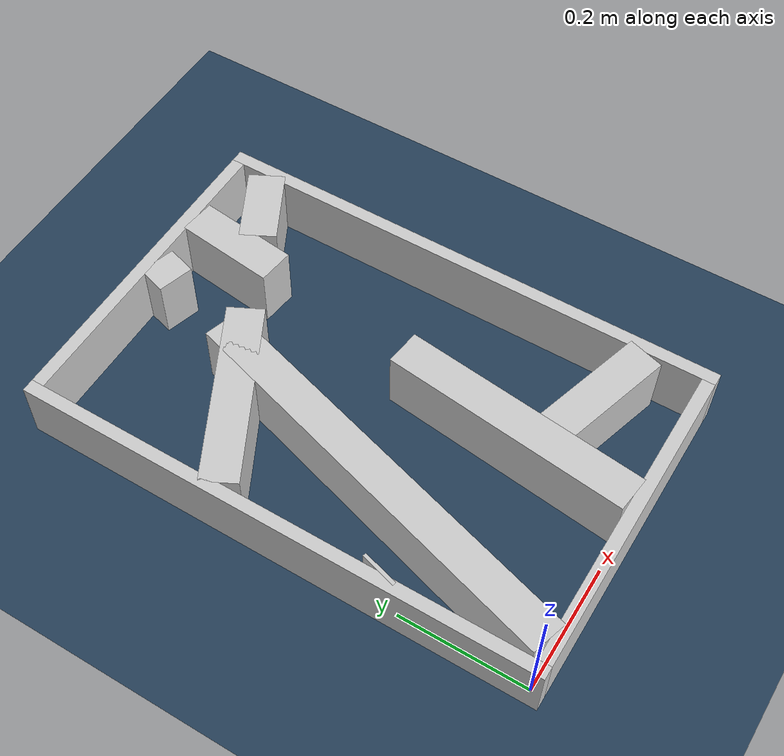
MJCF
<?xml version="1.0" ?>
<mujoco model="generated_real_template">
  <compiler angle="degree"/>
  <option timestep="0.002" integrator="implicitfast" iterations="100" cone="elliptic"/>
  <default>
    <geom density="1"/>
  </default>
  <asset>
    <texture builtin="gradient" height="3072" rgb1="0.3 0.5 0.7" rgb2="0 0 0" type="skybox" width="512"/>
    <texture builtin="checker" height="300" mark="edge" markrgb="0.8 0.8 0.8" name="groundplane" rgb1="0.2 0.3 0.4" rgb2="0.1 0.2 0.3" type="2d" width="300"/>
    <material name="groundplane" reflectance="0.2" texrepeat="5 5" texture="groundplane" texuniform="true"/>
  </asset>
  <worldbody>
    <light dir="0 0 -1" directional="true" pos="0 0 1.5"/>
    <geom name="floor" type="plane" condim="4" friction="0.5 0.005 0.001" material="groundplane" size="0 0 0.05"/>
    <body name="walls">
      <geom name="wall_boundary_left" type="box" condim="4" friction="1.0 0.005 0.0001" rgba="0.8 0.8 0.8 1" pos="-0.010000 0.387500 0.050000" euler="0 0 0.000000" size="0.010000 0.407500 0.050000"/>
      <geom name="wall_boundary_right" type="box" condim="4" friction="1.0 0.005 0.0001" rgba="0.8 0.8 0.8 1" pos="0.500000 0.387500 0.050000" euler="0 0 0.000000" size="0.010000 0.407500 0.050000"/>
      <geom name="wall_boundary_bottom" type="box" condim="4" friction="1.0 0.005 0.0001" rgba="0.8 0.8 0.8 1" pos="0.245000 -0.010000 0.050000" euler="0 0 0.000000" size="0.245000 0.010000 0.050000"/>
      <geom name="wall_boundary_top" type="box" condim="4" friction="1.0 0.005 0.0001" rgba="0.8 0.8 0.8 1" pos="0.245000 0.785000 0.050000" euler="0 0 0.000000" size="0.245000 0.010000 0.050000"/>
      <geom name="wall_inner_1_1" type="box" condim="4" friction="1.0 0.005 0.0001" rgba="0.8 0.8 0.8 1" pos="0.129939 0.545755 0.050000" euler="0 0 27.255058" size="0.146166 0.028500 0.050000"/>
      <geom name="wall_inner_1_2" type="box" condim="4" friction="1.0 0.005 0.0001" rgba="0.8 0.8 0.8 1" pos="0.435903 0.703371 0.050000" euler="0 0 27.255058" size="0.060853 0.028500 0.050000"/>
      <geom name="wall_inner_2_1" type="box" condim="4" friction="1.0 0.005 0.0001" rgba="0.8 0.8 0.8 1" pos="0.393717 0.114098 0.050000" euler="0 0 163.510096" size="0.100413 0.028500 0.050000"/>
      <geom name="wall_inner_2_2" type="box" condim="4" friction="1.0 0.005 0.0001" rgba="0.8 0.8 0.8 1" pos="0.002788 0.229822 0.050000" euler="0 0 163.510096" size="0.002908 0.028500 0.050000"/>
      <geom name="wall_inner_3_1" type="box" condim="4" friction="1.0 0.005 0.0001" rgba="0.8 0.8 0.8 1" pos="0.256641 0.752498 0.050000" euler="0 0 -106.610919" size="0.023482 0.028500 0.050000"/>
      <geom name="wall_inner_3_2" type="box" condim="4" friction="1.0 0.005 0.0001" rgba="0.8 0.8 0.8 1" pos="0.125753 0.313747 0.050000" euler="0 0 -106.610919" size="0.327411 0.028500 0.050000"/>
      <geom name="wall_inner_4_1" type="box" condim="4" friction="1.0 0.005 0.0001" rgba="0.8 0.8 0.8 1" pos="0.356035 0.696768 0.050000" euler="0 0 -96.819003" size="0.078790 0.028500 0.050000"/>
      <geom name="wall_inner_4_2" type="box" condim="4" friction="1.0 0.005 0.0001" rgba="0.8 0.8 0.8 1" pos="0.295704 0.192238 0.050000" euler="0 0 -96.819003" size="0.193607 0.028500 0.050000"/>
    </body>
  </worldbody>
</mujoco>
